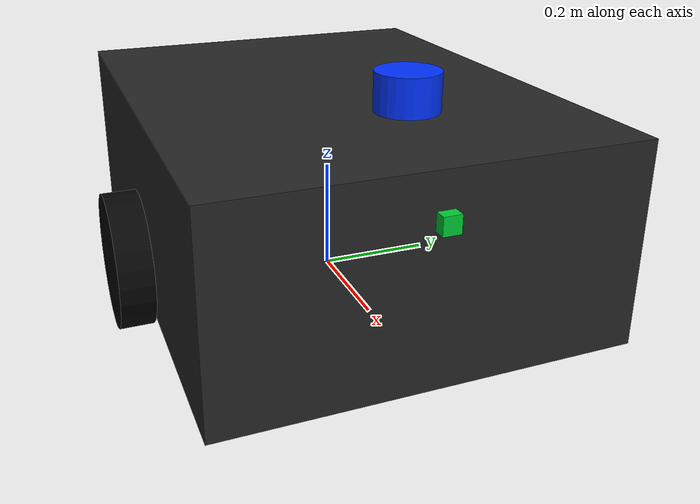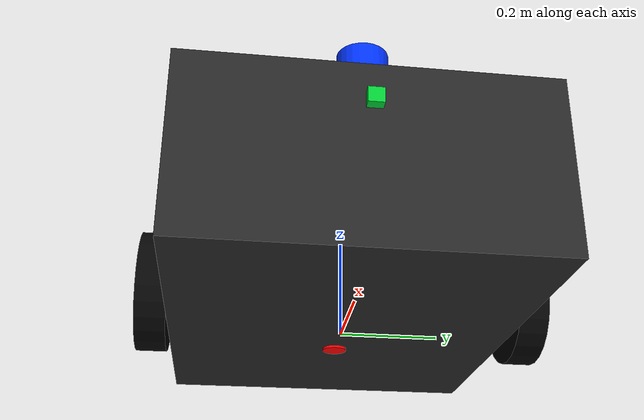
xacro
<?xml version="1.0"?>
<robot name="fre_robot_minimal" xmlns:xacro="http://www.ros.org/wiki/xacro">

  <!-- Basic dimensions       -->
  <xacro:property name="base_length" value="0.90"/>
  <xacro:property name="base_width"  value="0.70"/>
  <xacro:property name="base_height" value="0.35"/>

  <xacro:property name="wheel_radius" value="0.12"/>
  <xacro:property name="wheel_width"  value="0.06"/>

  <!-- base_footprint         -->
  <link name="base_footprint"/>

  <joint name="base_footprint_to_base_link" type="fixed">
    <parent link="base_footprint"/>
    <child link="base_link"/>
    <origin xyz="0 0 0.175" rpy="0 0 0"/>
  </joint>

  <!-- base_link              -->
  <link name="base_link">
    <visual>
      <origin xyz="0 0 0" rpy="0 0 0"/>
      <geometry>
        <box size="${base_length} ${base_width} ${base_height}"/>
      </geometry>
      <material name="dark_gray">
        <color rgba="0.15 0.15 0.15 1.0"/>
      </material>
    </visual>

    <collision>
      <origin xyz="0 0 0" rpy="0 0 0"/>
      <geometry>
        <box size="${base_length} ${base_width} ${base_height}"/>
      </geometry>
    </collision>

    <inertial>
      <origin xyz="0 0 0"/>
      <mass value="25.0"/>
      <inertia ixx="1.5" ixy="0" ixz="0" iyy="1.5" iyz="0" izz="1.5"/>
    </inertial>
  </link>

  <!-- lidar                  -->
  <link name="lidar_link">
    <visual>
      <geometry>
        <cylinder radius="0.05" length="0.06"/>
      </geometry>
      <material name="blue">
        <color rgba="0.0 0.2 1.0 1.0"/>
      </material>
    </visual>
  </link>

  <joint name="base_link_to_lidar" type="fixed">
    <parent link="base_link"/>
    <child link="lidar_link"/>
    <origin xyz="0.32 0 0.25" rpy="0 0 0"/>
  </joint>

  <!-- front depth camera     -->
  <link name="front_camera_link">
    <visual>
      <geometry>
        <box size="0.08 0.03 0.03"/>
      </geometry>
      <material name="green">
        <color rgba="0.0 0.8 0.2 1.0"/>
      </material>
    </visual>
  </link>

  <joint name="base_link_to_front_camera" type="fixed">
    <parent link="base_link"/>
    <child link="front_camera_link"/>
    <origin xyz="0.43 0 0.10" rpy="0 0 0"/>
  </joint>

  <link name="front_camera_optical_frame"/>

  <joint name="front_camera_to_optical" type="fixed">
    <parent link="front_camera_link"/>
    <child link="front_camera_optical_frame"/>
    <!-- ROS optical frame: z forward, x right, y down -->
    <origin xyz="0 0 0" rpy="-1.5708 0 -1.5708"/>
  </joint>

  <!-- downward depth camera  -->
  <link name="down_camera_link">
    <visual>
      <geometry>
        <box size="0.08 0.03 0.03"/>
      </geometry>
      <material name="yellow">
        <color rgba="1.0 0.8 0.0 1.0"/>
      </material>
    </visual>
  </link>

  <joint name="base_link_to_down_camera" type="fixed">
    <parent link="base_link"/>
    <child link="down_camera_link"/>
    <origin xyz="0.15 0 0.05" rpy="0 1.5708 0"/>
  </joint>

  <link name="down_camera_optical_frame"/>

  <joint name="down_camera_to_optical" type="fixed">
    <parent link="down_camera_link"/>
    <child link="down_camera_optical_frame"/>
    <origin xyz="0 0 0" rpy="-1.5708 0 -1.5708"/>
  </joint>

  <!-- treatment tool / nozzle -->
  <link name="treatment_tool_link">
    <visual>
      <geometry>
        <cylinder radius="0.025" length="0.12"/>
      </geometry>
      <material name="red">
        <color rgba="1.0 0.0 0.0 1.0"/>
      </material>
    </visual>
  </link>

  <joint name="base_link_to_treatment_tool" type="fixed">
    <parent link="base_link"/>
    <child link="treatment_tool_link"/>
    <origin xyz="-0.10 0 -0.12" rpy="0 0 0"/>
  </joint>

  <!-- wheels, visual only    -->
  <link name="left_wheel_link">
    <visual>
      <origin xyz="0 0 0" rpy="1.5708 0 0"/>
      <geometry>
        <cylinder radius="${wheel_radius}" length="${wheel_width}"/>
      </geometry>
      <material name="black">
        <color rgba="0.02 0.02 0.02 1.0"/>
      </material>
    </visual>
  </link>

  <joint name="base_link_to_left_wheel" type="fixed">
    <parent link="base_link"/>
    <child link="left_wheel_link"/>
    <origin xyz="0.0 0.38 -0.10" rpy="0 0 0"/>
  </joint>

  <link name="right_wheel_link">
    <visual>
      <origin xyz="0 0 0" rpy="1.5708 0 0"/>
      <geometry>
        <cylinder radius="${wheel_radius}" length="${wheel_width}"/>
      </geometry>
      <material name="black"/>
    </visual>
  </link>

  <joint name="base_link_to_right_wheel" type="fixed">
    <parent link="base_link"/>
    <child link="right_wheel_link"/>
    <origin xyz="0.0 -0.38 -0.10" rpy="0 0 0"/>
  </joint>

</robot>
